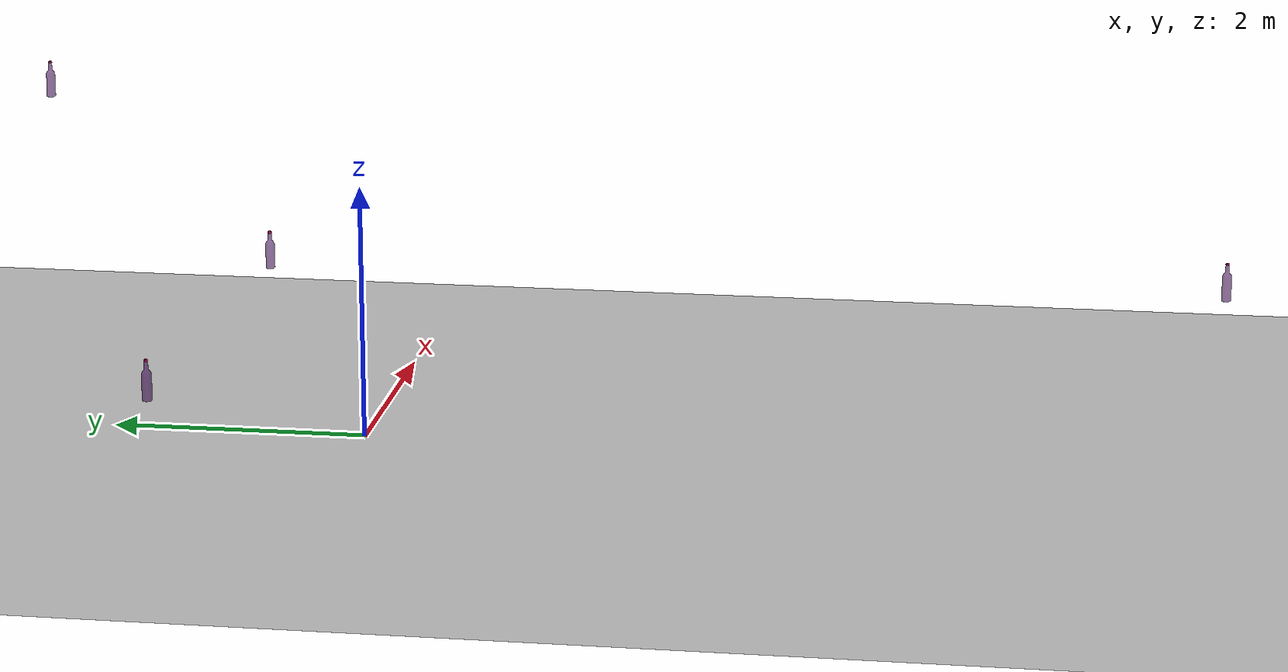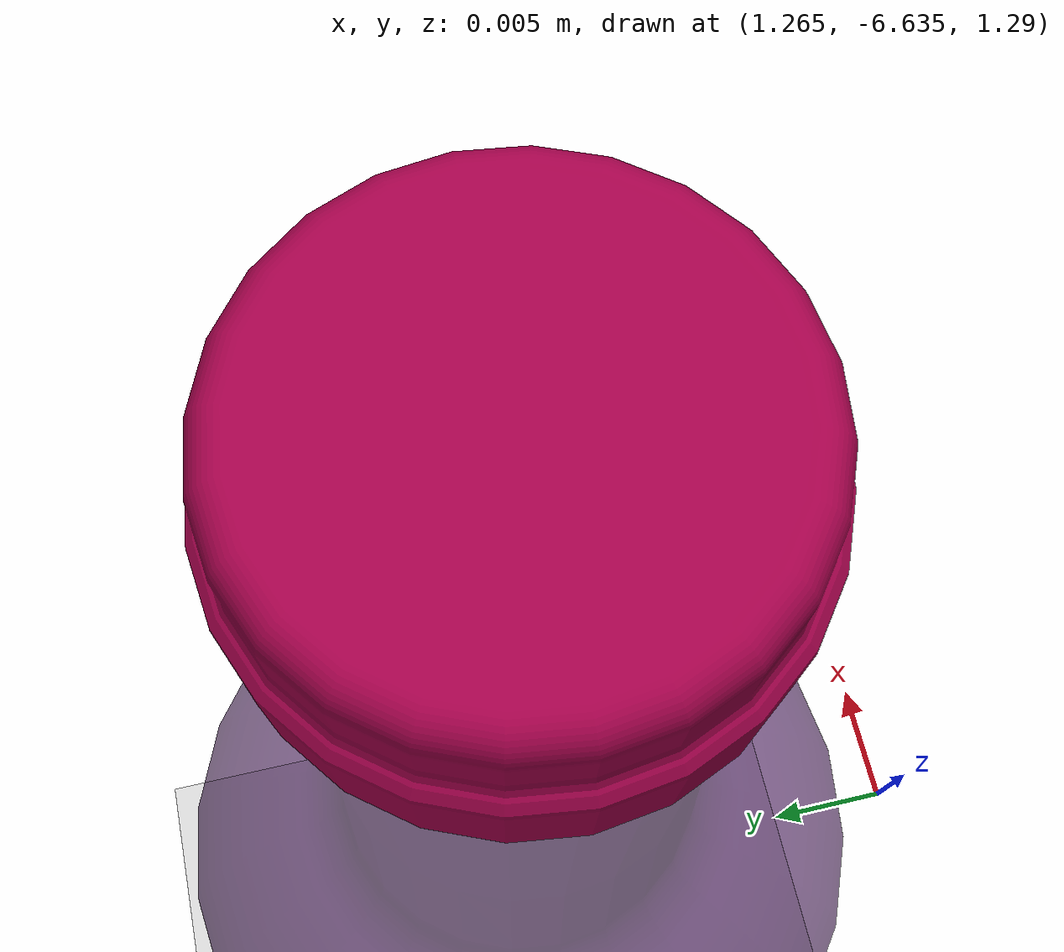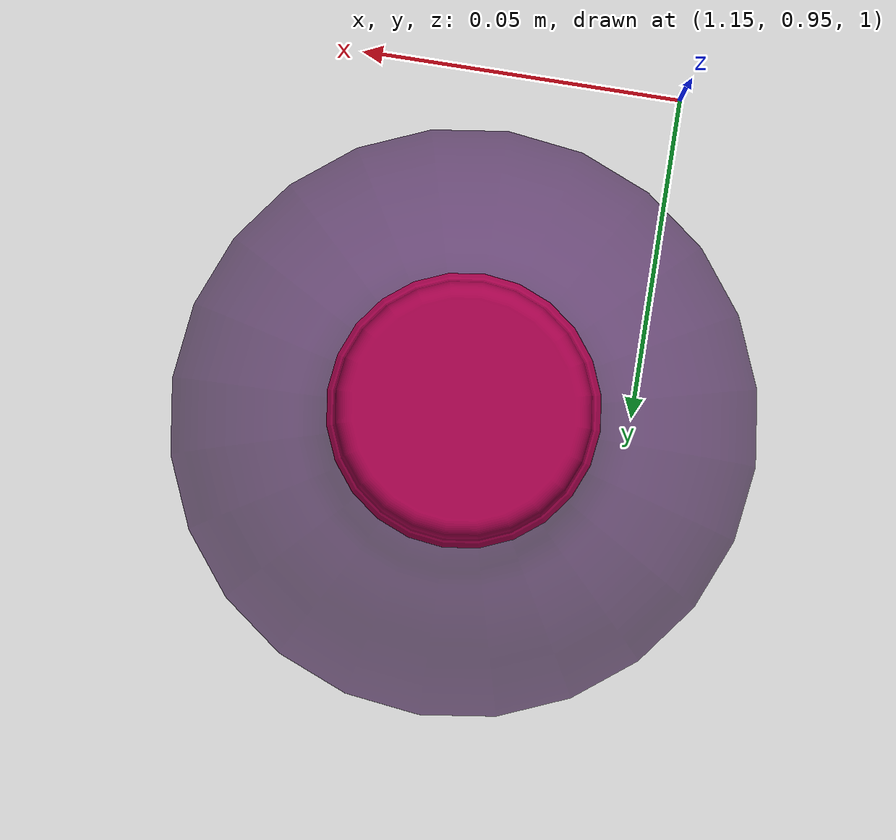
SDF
<sdf version="1.7">
 <world name="default">
  <light name="sun" type="directional">
   <pose>0 0 10 0 -0 0</pose>
   <diffuse>0.8 0.8 0.8 1</diffuse>
   <specular>0.2 0.2 0.2 1</specular>
   <attenuation>
    <range>1000</range>
    <constant>0.9</constant>
    <linear>0.01</linear>
    <quadratic>0.001</quadratic>
   </attenuation>
   <direction>-0.5 0.1 -0.9</direction>
   <spot><inner_angle>0</inner_angle><outer_angle>0</outer_angle><falloff>0</falloff></spot>
  </light>
  <model name="ground_plane">
   <static>1</static>
   <link name="link">
    <collision name="collision">
     <geometry><plane><normal>0 0 1</normal><size>100 100</size></plane></geometry>
     <surface><friction><ode><mu>100</mu><mu2>50</mu2></ode></friction></surface>
    </collision>
    <visual name="visual">
     <cast_shadows>0</cast_shadows>
     <geometry><plane><normal>0 0 1</normal><size>100 100</size></plane></geometry>
     <material>
      <script><uri>file://media/materials/scripts/gazebo.material</uri><name>Gazebo/Grey</name></script>
     </material>
    </visual>
   </link>
  </model>
  <gravity>0 0 -9.8</gravity>
  <magnetic_field>6e-06 2.3e-05 -4.2e-05</magnetic_field>
  <atmosphere type="adiabatic"/>
  <physics type="ode">
   <max_step_size>0.001</max_step_size>
   <real_time_factor>1</real_time_factor>
   <real_time_update_rate>1000</real_time_update_rate>
  </physics>
  <scene><ambient>0.4 0.4 0.4 1</ambient><background>0.7 0.7 0.7 1</background><shadows>1</shadows></scene>
  <spherical_coordinates>
   <surface_model>EARTH_WGS84</surface_model>
   <latitude_deg>0</latitude_deg>
   <longitude_deg>0</longitude_deg>
   <elevation>0</elevation>
   <heading_deg>0</heading_deg>
  </spherical_coordinates>
  <model name="bottle_red_wine">
   <link name="link_22">
    <pose>-0.038814 -0.033806 0.002754 0 -0 0</pose>
    <visual name="visual">
     <geometry><mesh><uri>model://bottle_red_wine/meshes/bottle.dae</uri><scale>1 1 1</scale></mesh></geometry>
     <material>
      <lighting>1</lighting>
      <ambient>0.215 0 0.305 1</ambient>
      <diffuse>0.215 0 0.305 1</diffuse>
      <specular>0.01 0.01 0.01 1</specular>
      <emissive>0 0 0 1</emissive>
      <shader type="vertex"><normal_map>__default__</normal_map></shader>
     </material>
     <transparency>0.4</transparency>
    </visual>
    <collision name="collision">
     <geometry><mesh><uri>model://bottle_red_wine/meshes/bottle.dae</uri><scale>1 1 1</scale></mesh></geometry>
    </collision>
   </link>
   <link name="link_23">
    <pose>-0.038814 -0.033806 0.002754 0 -0 0</pose>
    <inertial>
     <mass>1</mass>
     <inertia>
      <ixx>0.166667</ixx>
      <ixy>0</ixy>
      <ixz>0</ixz>
      <iyy>0.166667</iyy>
      <iyz>0</iyz>
      <izz>0.166667</izz>
     </inertia>
    </inertial>
    <visual name="visual">
     <geometry><mesh><uri>model://bottle_red_wine/meshes/cap.dae</uri><scale>1 1 1</scale></mesh></geometry>
     <material>
      <lighting>1</lighting>
      <ambient>0.623 0 0.282 1</ambient>
      <diffuse>0.623 0 0.282 1</diffuse>
      <specular>0.01 0.01 0.01 1</specular>
      <emissive>0 0 0 1</emissive>
      <shader type="vertex"><normal_map>__default__</normal_map></shader>
     </material>
    </visual>
    <collision name="collision">
     <geometry><mesh><uri>model://bottle_red_wine/meshes/cap.dae</uri><scale>1 1 1</scale></mesh></geometry>
    </collision>
   </link>
   <static>1</static>
   <pose>1.17761 1.00434 1 0 -0 0</pose>
  </model>
  <model name="bottle_red_wine_clone">
   <link name="link_22">
    <pose>-0.038814 -0.033806 0.002754 0 -0 0</pose>
    <visual name="visual">
     <geometry><mesh><uri>model://bottle_red_wine/meshes/bottle.dae</uri><scale>1 1 1</scale></mesh></geometry>
     <material>
      <lighting>1</lighting>
      <ambient>0.215 0 0.305 1</ambient>
      <diffuse>0.215 0 0.305 1</diffuse>
      <specular>0.01 0.01 0.01 1</specular>
      <emissive>0 0 0 1</emissive>
      <shader type="vertex"><normal_map>__default__</normal_map></shader>
     </material>
     <transparency>0.4</transparency>
    </visual>
    <collision name="collision">
     <geometry><mesh><uri>model://bottle_red_wine/meshes/bottle.dae</uri><scale>1 1 1</scale></mesh></geometry>
    </collision>
   </link>
   <link name="link_23">
    <pose>-0.038814 -0.033806 0.002754 0 -0 0</pose>
    <inertial>
     <mass>1</mass>
     <inertia>
      <ixx>0.166667</ixx>
      <ixy>0</ixy>
      <ixz>0</ixz>
      <iyy>0.166667</iyy>
      <iyz>0</iyz>
      <izz>0.166667</izz>
     </inertia>
    </inertial>
    <visual name="visual">
     <geometry><mesh><uri>model://bottle_red_wine/meshes/cap.dae</uri><scale>1 1 1</scale></mesh></geometry>
     <material>
      <lighting>1</lighting>
      <ambient>0.623 0 0.282 1</ambient>
      <diffuse>0.623 0 0.282 1</diffuse>
      <specular>0.01 0.01 0.01 1</specular>
      <emissive>0 0 0 1</emissive>
      <shader type="vertex"><normal_map>__default__</normal_map></shader>
     </material>
    </visual>
    <collision name="collision">
     <geometry><mesh><uri>model://bottle_red_wine/meshes/cap.dae</uri><scale>1 1 1</scale></mesh></geometry>
    </collision>
   </link>
   <static>1</static>
   <pose>2.74013 3.26391 2 0 -0 0</pose>
  </model>
  <model name="bottle_red_wine_clone_0">
   <link name="link_22">
    <pose>-0.038814 -0.033806 0.002754 0 -0 0</pose>
    <visual name="visual">
     <geometry><mesh><uri>model://bottle_red_wine/meshes/bottle.dae</uri><scale>1 1 1</scale></mesh></geometry>
     <material>
      <lighting>1</lighting>
      <ambient>0.215 0 0.305 1</ambient>
      <diffuse>0.215 0 0.305 1</diffuse>
      <specular>0.01 0.01 0.01 1</specular>
      <emissive>0 0 0 1</emissive>
      <shader type="vertex"><normal_map>__default__</normal_map></shader>
     </material>
     <transparency>0.4</transparency>
    </visual>
    <collision name="collision">
     <geometry><mesh><uri>model://bottle_red_wine/meshes/bottle.dae</uri><scale>1 1 1</scale></mesh></geometry>
    </collision>
   </link>
   <link name="link_23">
    <pose>-0.038814 -0.033806 0.002754 0 -0 0</pose>
    <inertial>
     <mass>1</mass>
     <inertia>
      <ixx>0.166667</ixx>
      <ixy>0</ixy>
      <ixz>0</ixz>
      <iyy>0.166667</iyy>
      <iyz>0</iyz>
      <izz>0.166667</izz>
     </inertia>
    </inertial>
    <visual name="visual">
     <geometry><mesh><uri>model://bottle_red_wine/meshes/cap.dae</uri><scale>1 1 1</scale></mesh></geometry>
     <material>
      <lighting>1</lighting>
      <ambient>0.623 0 0.282 1</ambient>
      <diffuse>0.623 0 0.282 1</diffuse>
      <specular>0.01 0.01 0.01 1</specular>
      <emissive>0 0 0 1</emissive>
      <shader type="vertex"><normal_map>__default__</normal_map></shader>
     </material>
    </visual>
    <collision name="collision">
     <geometry><mesh><uri>model://bottle_red_wine/meshes/cap.dae</uri><scale>1 1 1</scale></mesh></geometry>
    </collision>
   </link>
   <static>1</static>
   <pose>-2.41147 1.04749 1 0 -0 0</pose>
  </model>
  <model name="bottle_red_wine_clone_1">
   <link name="link_22">
    <pose>-0.038814 -0.033806 0.002754 0 -0 0</pose>
    <visual name="visual">
     <geometry><mesh><uri>model://bottle_red_wine/meshes/bottle.dae</uri><scale>1 1 1</scale></mesh></geometry>
     <material>
      <lighting>1</lighting>
      <ambient>0.215 0 0.305 1</ambient>
      <diffuse>0.215 0 0.305 1</diffuse>
      <specular>0.01 0.01 0.01 1</specular>
      <emissive>0 0 0 1</emissive>
      <shader type="vertex"><normal_map>__default__</normal_map></shader>
     </material>
     <transparency>0.4</transparency>
    </visual>
    <collision name="collision">
     <geometry><mesh><uri>model://bottle_red_wine/meshes/bottle.dae</uri><scale>1 1 1</scale></mesh></geometry>
    </collision>
   </link>
   <link name="link_23">
    <pose>-0.038814 -0.033806 0.002754 0 -0 0</pose>
    <inertial>
     <mass>1</mass>
     <inertia>
      <ixx>0.166667</ixx>
      <ixy>0</ixy>
      <ixz>0</ixz>
      <iyy>0.166667</iyy>
      <iyz>0</iyz>
      <izz>0.166667</izz>
     </inertia>
    </inertial>
    <visual name="visual">
     <geometry><mesh><uri>model://bottle_red_wine/meshes/cap.dae</uri><scale>1 1 1</scale></mesh></geometry>
     <material>
      <lighting>1</lighting>
      <ambient>0.623 0 0.282 1</ambient>
      <diffuse>0.623 0 0.282 1</diffuse>
      <specular>0.01 0.01 0.01 1</specular>
      <emissive>0 0 0 1</emissive>
      <shader type="vertex"><normal_map>__default__</normal_map></shader>
     </material>
    </visual>
    <collision name="collision">
     <geometry><mesh><uri>model://bottle_red_wine/meshes/cap.dae</uri><scale>1 1 1</scale></mesh></geometry>
    </collision>
   </link>
   <static>1</static>
   <pose>1.28252 -6.6237 1 0 -0 0</pose>
  </model>
 </world>
</sdf>
